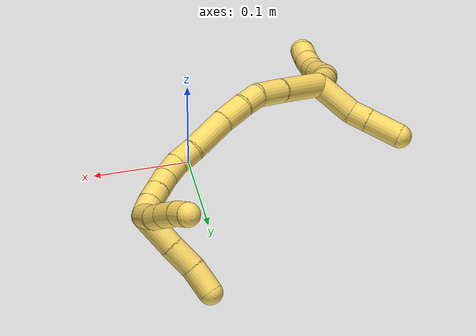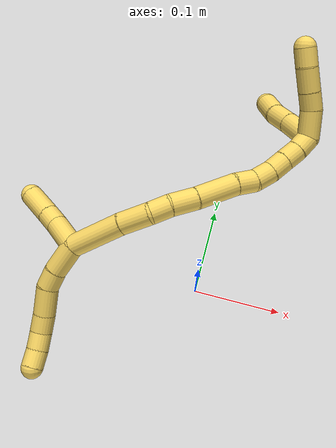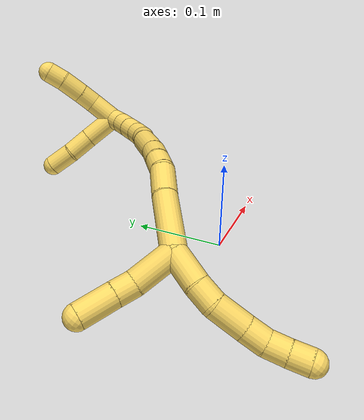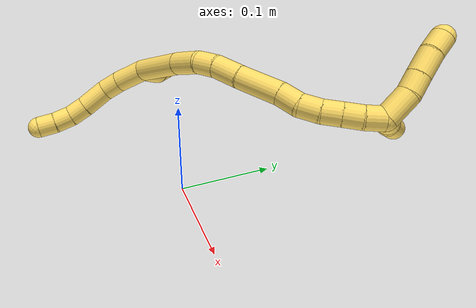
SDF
<sdf version="1.7">
 <world name="default">
  <model name="5">
   <static>0</static>
   <link name="5">
    <collision name="collision-cylinder-e_1_2_8">
     <pose>-0.009251 -0.002479 -0.014575 2.9731 -0.559121 -2.56941</pose>
     <geometry><cylinder><radius>0.0125</radius><length>0.034879</length></cylinder></geometry>
     <surface>
      <friction><ode><mu>1.16</mu><mu2>1.16</mu2><slip1>0</slip1><slip2>0</slip2></ode></friction>
      <contact><ode><kp>1e+06</kp><kd>1</kd><max_vel>0</max_vel><min_depth>0.001</min_depth></ode></contact>
     </surface>
    </collision>
    <visual name="visual-cylinder-e_1_2_8">
     <pose>-0.009251 -0.002479 -0.014575 2.9731 -0.559121 -2.56941</pose>
     <geometry><cylinder><radius>0.0125</radius><length>0.034879</length></cylinder></geometry>
     <material><ambient>1 0.858824 0.4 1</ambient></material>
    </visual>
    <collision name="collision-cylinder-e_2_8_9">
     <pose>-0.022766 -0.00629 -0.038984 3.00699 -0.405809 -2.5084</pose>
     <geometry><cylinder><radius>0.0125</radius><length>0.021605</length></cylinder></geometry>
     <surface>
      <friction><ode><mu>1.16</mu><mu2>1.16</mu2><slip1>0</slip1><slip2>0</slip2></ode></friction>
      <contact><ode><kp>1e+06</kp><kd>1</kd><max_vel>0</max_vel><min_depth>0.001</min_depth></ode></contact>
     </surface>
    </collision>
    <visual name="visual-cylinder-e_2_8_9">
     <pose>-0.022766 -0.00629 -0.038984 3.00699 -0.405809 -2.5084</pose>
     <geometry><cylinder><radius>0.0125</radius><length>0.021605</length></cylinder></geometry>
     <material><ambient>1 0.858824 0.4 1</ambient></material>
    </visual>
    <collision name="collision-cylinder-e_3_9_10">
     <pose>-0.028531 -0.009467 -0.064605 3.02524 -0.094192 -1.36071</pose>
     <geometry><cylinder><radius>0.0125</radius><length>0.031928</length></cylinder></geometry>
     <surface>
      <friction><ode><mu>1.16</mu><mu2>1.16</mu2><slip1>0</slip1><slip2>0</slip2></ode></friction>
      <contact><ode><kp>1e+06</kp><kd>1</kd><max_vel>0</max_vel><min_depth>0.001</min_depth></ode></contact>
     </surface>
    </collision>
    <visual name="visual-cylinder-e_3_9_10">
     <pose>-0.028531 -0.009467 -0.064605 3.02524 -0.094192 -1.36071</pose>
     <geometry><cylinder><radius>0.0125</radius><length>0.031928</length></cylinder></geometry>
     <material><ambient>1 0.858824 0.4 1</ambient></material>
    </visual>
    <collision name="collision-cylinder-e_4_10_11">
     <pose>-0.031373 -0.013351 -0.090643 2.94524 -0.127545 -1.15044</pose>
     <geometry><cylinder><radius>0.0125</radius><length>0.021076</length></cylinder></geometry>
     <surface>
      <friction><ode><mu>1.16</mu><mu2>1.16</mu2><slip1>0</slip1><slip2>0</slip2></ode></friction>
      <contact><ode><kp>1e+06</kp><kd>1</kd><max_vel>0</max_vel><min_depth>0.001</min_depth></ode></contact>
     </surface>
    </collision>
    <visual name="visual-cylinder-e_4_10_11">
     <pose>-0.031373 -0.013351 -0.090643 2.94524 -0.127545 -1.15044</pose>
     <geometry><cylinder><radius>0.0125</radius><length>0.021076</length></cylinder></geometry>
     <material><ambient>1 0.858824 0.4 1</ambient></material>
    </visual>
    <collision name="collision-cylinder-e_5_11_12">
     <pose>-0.033313 -0.019624 -0.110159 2.71299 -0.05877 -0.268478</pose>
     <geometry><cylinder><radius>0.0125</radius><length>0.020407</length></cylinder></geometry>
     <surface>
      <friction><ode><mu>1.16</mu><mu2>1.16</mu2><slip1>0</slip1><slip2>0</slip2></ode></friction>
      <contact><ode><kp>1e+06</kp><kd>1</kd><max_vel>0</max_vel><min_depth>0.001</min_depth></ode></contact>
     </surface>
    </collision>
    <visual name="visual-cylinder-e_5_11_12">
     <pose>-0.033313 -0.019624 -0.110159 2.71299 -0.05877 -0.268478</pose>
     <geometry><cylinder><radius>0.0125</radius><length>0.020407</length></cylinder></geometry>
     <material><ambient>1 0.858824 0.4 1</ambient></material>
    </visual>
    <collision name="collision-cylinder-e_6_12_6">
     <pose>-0.034955 -0.029193 -0.127879 2.57868 -0.103934 -0.355987</pose>
     <geometry><cylinder><radius>0.0125</radius><length>0.020106</length></cylinder></geometry>
     <surface>
      <friction><ode><mu>1.16</mu><mu2>1.16</mu2><slip1>0</slip1><slip2>0</slip2></ode></friction>
      <contact><ode><kp>1e+06</kp><kd>1</kd><max_vel>0</max_vel><min_depth>0.001</min_depth></ode></contact>
     </surface>
    </collision>
    <visual name="visual-cylinder-e_6_12_6">
     <pose>-0.034955 -0.029193 -0.127879 2.57868 -0.103934 -0.355987</pose>
     <geometry><cylinder><radius>0.0125</radius><length>0.020106</length></cylinder></geometry>
     <material><ambient>1 0.858824 0.4 1</ambient></material>
    </visual>
    <collision name="collision-cylinder-e_1_2_13">
     <pose>-0.01505 0.014819 0.005584 -1.21045 -0.759956 0.539165</pose>
     <geometry><cylinder><radius>0.0125</radius><length>0.043693</length></cylinder></geometry>
     <surface>
      <friction><ode><mu>1.16</mu><mu2>1.16</mu2><slip1>0</slip1><slip2>0</slip2></ode></friction>
      <contact><ode><kp>1e+06</kp><kd>1</kd><max_vel>0</max_vel><min_depth>0.001</min_depth></ode></contact>
     </surface>
    </collision>
    <visual name="visual-cylinder-e_1_2_13">
     <pose>-0.01505 0.014819 0.005584 -1.21045 -0.759956 0.539165</pose>
     <geometry><cylinder><radius>0.0125</radius><length>0.043693</length></cylinder></geometry>
     <material><ambient>1 0.858824 0.4 1</ambient></material>
    </visual>
    <collision name="collision-cylinder-e_2_13_14">
     <pose>-0.037735 0.034499 0.015507 -0.842037 -0.86431 0.407347</pose>
     <geometry><cylinder><radius>0.0125</radius><length>0.020077</length></cylinder></geometry>
     <surface>
      <friction><ode><mu>1.16</mu><mu2>1.16</mu2><slip1>0</slip1><slip2>0</slip2></ode></friction>
      <contact><ode><kp>1e+06</kp><kd>1</kd><max_vel>0</max_vel><min_depth>0.001</min_depth></ode></contact>
     </surface>
    </collision>
    <visual name="visual-cylinder-e_2_13_14">
     <pose>-0.037735 0.034499 0.015507 -0.842037 -0.86431 0.407347</pose>
     <geometry><cylinder><radius>0.0125</radius><length>0.020077</length></cylinder></geometry>
     <material><ambient>1 0.858824 0.4 1</ambient></material>
    </visual>
    <collision name="collision-cylinder-e_3_14_5">
     <pose>-0.059334 0.048149 0.027325 -0.865805 -0.880124 0.428522</pose>
     <geometry><cylinder><radius>0.0125</radius><length>0.036231</length></cylinder></geometry>
     <surface>
      <friction><ode><mu>1.16</mu><mu2>1.16</mu2><slip1>0</slip1><slip2>0</slip2></ode></friction>
      <contact><ode><kp>1e+06</kp><kd>1</kd><max_vel>0</max_vel><min_depth>0.001</min_depth></ode></contact>
     </surface>
    </collision>
    <visual name="visual-cylinder-e_3_14_5">
     <pose>-0.059334 0.048149 0.027325 -0.865805 -0.880124 0.428522</pose>
     <geometry><cylinder><radius>0.0125</radius><length>0.036231</length></cylinder></geometry>
     <material><ambient>1 0.858824 0.4 1</ambient></material>
    </visual>
    <collision name="collision-cylinder-e_1_2_15">
     <pose>0.026792 0.001745 0.015306 -0.113501 1.04898 -0.065712</pose>
     <geometry><cylinder><radius>0.0125</radius><length>0.061811</length></cylinder></geometry>
     <surface>
      <friction><ode><mu>1.16</mu><mu2>1.16</mu2><slip1>0</slip1><slip2>0</slip2></ode></friction>
      <contact><ode><kp>1e+06</kp><kd>1</kd><max_vel>0</max_vel><min_depth>0.001</min_depth></ode></contact>
     </surface>
    </collision>
    <visual name="visual-cylinder-e_1_2_15">
     <pose>0.026792 0.001745 0.015306 -0.113501 1.04898 -0.065712</pose>
     <geometry><cylinder><radius>0.0125</radius><length>0.061811</length></cylinder></geometry>
     <material><ambient>1 0.858824 0.4 1</ambient></material>
    </visual>
    <collision name="collision-cylinder-e_2_15_16">
     <pose>0.06906 0.005058 0.037655 -0.219189 1.13451 -0.139979</pose>
     <geometry><cylinder><radius>0.0125</radius><length>0.03415</length></cylinder></geometry>
     <surface>
      <friction><ode><mu>1.16</mu><mu2>1.16</mu2><slip1>0</slip1><slip2>0</slip2></ode></friction>
      <contact><ode><kp>1e+06</kp><kd>1</kd><max_vel>0</max_vel><min_depth>0.001</min_depth></ode></contact>
     </surface>
    </collision>
    <visual name="visual-cylinder-e_2_15_16">
     <pose>0.06906 0.005058 0.037655 -0.219189 1.13451 -0.139979</pose>
     <geometry><cylinder><radius>0.0125</radius><length>0.03415</length></cylinder></geometry>
     <material><ambient>1 0.858824 0.4 1</ambient></material>
    </visual>
    <collision name="collision-cylinder-e_3_16_17">
     <pose>0.09409 0.01122 0.048795 -0.842229 0.998536 -0.479155</pose>
     <geometry><cylinder><radius>0.0125</radius><length>0.022731</length></cylinder></geometry>
     <surface>
      <friction><ode><mu>1.16</mu><mu2>1.16</mu2><slip1>0</slip1><slip2>0</slip2></ode></friction>
      <contact><ode><kp>1e+06</kp><kd>1</kd><max_vel>0</max_vel><min_depth>0.001</min_depth></ode></contact>
     </surface>
    </collision>
    <visual name="visual-cylinder-e_3_16_17">
     <pose>0.09409 0.01122 0.048795 -0.842229 0.998536 -0.479155</pose>
     <geometry><cylinder><radius>0.0125</radius><length>0.022731</length></cylinder></geometry>
     <material><ambient>1 0.858824 0.4 1</ambient></material>
    </visual>
    <collision name="collision-cylinder-e_4_17_18">
     <pose>0.116011 0.023226 0.055984 -1.1759 0.9947 -0.694423</pose>
     <geometry><cylinder><radius>0.0125</radius><length>0.029491</length></cylinder></geometry>
     <surface>
      <friction><ode><mu>1.16</mu><mu2>1.16</mu2><slip1>0</slip1><slip2>0</slip2></ode></friction>
      <contact><ode><kp>1e+06</kp><kd>1</kd><max_vel>0</max_vel><min_depth>0.001</min_depth></ode></contact>
     </surface>
    </collision>
    <visual name="visual-cylinder-e_4_17_18">
     <pose>0.116011 0.023226 0.055984 -1.1759 0.9947 -0.694423</pose>
     <geometry><cylinder><radius>0.0125</radius><length>0.029491</length></cylinder></geometry>
     <material><ambient>1 0.858824 0.4 1</ambient></material>
    </visual>
    <collision name="collision-cylinder-e_5_18_19">
     <pose>0.14687 0.043696 0.065288 -1.12654 0.907248 -0.597348</pose>
     <geometry><cylinder><radius>0.0125</radius><length>0.04695</length></cylinder></geometry>
     <surface>
      <friction><ode><mu>1.16</mu><mu2>1.16</mu2><slip1>0</slip1><slip2>0</slip2></ode></friction>
      <contact><ode><kp>1e+06</kp><kd>1</kd><max_vel>0</max_vel><min_depth>0.001</min_depth></ode></contact>
     </surface>
    </collision>
    <visual name="visual-cylinder-e_5_18_19">
     <pose>0.14687 0.043696 0.065288 -1.12654 0.907248 -0.597348</pose>
     <geometry><cylinder><radius>0.0125</radius><length>0.04695</length></cylinder></geometry>
     <material><ambient>1 0.858824 0.4 1</ambient></material>
    </visual>
    <collision name="collision-cylinder-e_6_19_20">
     <pose>0.174808 0.063061 0.072801 -1.36779 0.972172 -0.813353</pose>
     <geometry><cylinder><radius>0.0125</radius><length>0.022864</length></cylinder></geometry>
     <surface>
      <friction><ode><mu>1.16</mu><mu2>1.16</mu2><slip1>0</slip1><slip2>0</slip2></ode></friction>
      <contact><ode><kp>1e+06</kp><kd>1</kd><max_vel>0</max_vel><min_depth>0.001</min_depth></ode></contact>
     </surface>
    </collision>
    <visual name="visual-cylinder-e_6_19_20">
     <pose>0.174808 0.063061 0.072801 -1.36779 0.972172 -0.813353</pose>
     <geometry><cylinder><radius>0.0125</radius><length>0.022864</length></cylinder></geometry>
     <material><ambient>1 0.858824 0.4 1</ambient></material>
    </visual>
    <collision name="collision-cylinder-e_7_20_21">
     <pose>0.191901 0.075781 0.078344 -0.985904 0.782853 -0.43636</pose>
     <geometry><cylinder><radius>0.0125</radius><length>0.02169</length></cylinder></geometry>
     <surface>
      <friction><ode><mu>1.16</mu><mu2>1.16</mu2><slip1>0</slip1><slip2>0</slip2></ode></friction>
      <contact><ode><kp>1e+06</kp><kd>1</kd><max_vel>0</max_vel><min_depth>0.001</min_depth></ode></contact>
     </surface>
    </collision>
    <visual name="visual-cylinder-e_7_20_21">
     <pose>0.191901 0.075781 0.078344 -0.985904 0.782853 -0.43636</pose>
     <geometry><cylinder><radius>0.0125</radius><length>0.02169</length></cylinder></geometry>
     <material><ambient>1 0.858824 0.4 1</ambient></material>
    </visual>
    <collision name="collision-cylinder-e_8_21_22">
     <pose>0.205871 0.088002 0.088006 -0.820438 0.672031 -0.301476</pose>
     <geometry><cylinder><radius>0.0125</radius><length>0.020303</length></cylinder></geometry>
     <surface>
      <friction><ode><mu>1.16</mu><mu2>1.16</mu2><slip1>0</slip1><slip2>0</slip2></ode></friction>
      <contact><ode><kp>1e+06</kp><kd>1</kd><max_vel>0</max_vel><min_depth>0.001</min_depth></ode></contact>
     </surface>
    </collision>
    <visual name="visual-cylinder-e_8_21_22">
     <pose>0.205871 0.088002 0.088006 -0.820438 0.672031 -0.301476</pose>
     <geometry><cylinder><radius>0.0125</radius><length>0.020303</length></cylinder></geometry>
     <material><ambient>1 0.858824 0.4 1</ambient></material>
    </visual>
    <collision name="collision-cylinder-e_9_22_23">
     <pose>0.218467 0.099566 0.098675 -0.830983 0.678209 -0.308755</pose>
     <geometry><cylinder><radius>0.0125</radius><length>0.020008</length></cylinder></geometry>
     <surface>
      <friction><ode><mu>1.16</mu><mu2>1.16</mu2><slip1>0</slip1><slip2>0</slip2></ode></friction>
      <contact><ode><kp>1e+06</kp><kd>1</kd><max_vel>0</max_vel><min_depth>0.001</min_depth></ode></contact>
     </surface>
    </collision>
    <visual name="visual-cylinder-e_9_22_23">
     <pose>0.218467 0.099566 0.098675 -0.830983 0.678209 -0.308755</pose>
     <geometry><cylinder><radius>0.0125</radius><length>0.020008</length></cylinder></geometry>
     <material><ambient>1 0.858824 0.4 1</ambient></material>
    </visual>
    <collision name="collision-cylinder-e_10_23_1">
     <pose>0.22999 0.111134 0.110147 -0.751648 0.552185 -0.222666</pose>
     <geometry><cylinder><radius>0.0125</radius><length>0.020001</length></cylinder></geometry>
     <surface>
      <friction><ode><mu>1.16</mu><mu2>1.16</mu2><slip1>0</slip1><slip2>0</slip2></ode></friction>
      <contact><ode><kp>1e+06</kp><kd>1</kd><max_vel>0</max_vel><min_depth>0.001</min_depth></ode></contact>
     </surface>
    </collision>
    <visual name="visual-cylinder-e_10_23_1">
     <pose>0.22999 0.111134 0.110147 -0.751648 0.552185 -0.222666</pose>
     <geometry><cylinder><radius>0.0125</radius><length>0.020001</length></cylinder></geometry>
     <material><ambient>1 0.858824 0.4 1</ambient></material>
    </visual>
    <collision name="collision-cylinder-e_1_1_24">
     <pose>0.235532 0.117259 0.132431 -0.019331 0.018419 -0.000178</pose>
     <geometry><cylinder><radius>0.0125</radius><length>0.032138</length></cylinder></geometry>
     <surface>
      <friction><ode><mu>1.16</mu><mu2>1.16</mu2><slip1>0</slip1><slip2>0</slip2></ode></friction>
      <contact><ode><kp>1e+06</kp><kd>1</kd><max_vel>0</max_vel><min_depth>0.001</min_depth></ode></contact>
     </surface>
    </collision>
    <visual name="visual-cylinder-e_1_1_24">
     <pose>0.235532 0.117259 0.132431 -0.019331 0.018419 -0.000178</pose>
     <geometry><cylinder><radius>0.0125</radius><length>0.032138</length></cylinder></geometry>
     <material><ambient>1 0.858824 0.4 1</ambient></material>
    </visual>
    <collision name="collision-cylinder-e_2_24_25">
     <pose>0.233914 0.116267 0.158526 0.129056 -0.186959 -0.012116</pose>
     <geometry><cylinder><radius>0.0125</radius><length>0.02059</length></cylinder></geometry>
     <surface>
      <friction><ode><mu>1.16</mu><mu2>1.16</mu2><slip1>0</slip1><slip2>0</slip2></ode></friction>
      <contact><ode><kp>1e+06</kp><kd>1</kd><max_vel>0</max_vel><min_depth>0.001</min_depth></ode></contact>
     </surface>
    </collision>
    <visual name="visual-cylinder-e_2_24_25">
     <pose>0.233914 0.116267 0.158526 0.129056 -0.186959 -0.012116</pose>
     <geometry><cylinder><radius>0.0125</radius><length>0.02059</length></cylinder></geometry>
     <material><ambient>1 0.858824 0.4 1</ambient></material>
    </visual>
    <collision name="collision-cylinder-e_3_25_26">
     <pose>0.229516 0.113733 0.181649 0.093843 -0.186723 -0.008793</pose>
     <geometry><cylinder><radius>0.0125</radius><length>0.026764</length></cylinder></geometry>
     <surface>
      <friction><ode><mu>1.16</mu><mu2>1.16</mu2><slip1>0</slip1><slip2>0</slip2></ode></friction>
      <contact><ode><kp>1e+06</kp><kd>1</kd><max_vel>0</max_vel><min_depth>0.001</min_depth></ode></contact>
     </surface>
    </collision>
    <visual name="visual-cylinder-e_3_25_26">
     <pose>0.229516 0.113733 0.181649 0.093843 -0.186723 -0.008793</pose>
     <geometry><cylinder><radius>0.0125</radius><length>0.026764</length></cylinder></geometry>
     <material><ambient>1 0.858824 0.4 1</ambient></material>
    </visual>
    <collision name="collision-cylinder-e_4_26_4">
     <pose>0.225173 0.112901 0.204816 -0.039629 -0.18232 0.003623</pose>
     <geometry><cylinder><radius>0.0125</radius><length>0.020508</length></cylinder></geometry>
     <surface>
      <friction><ode><mu>1.16</mu><mu2>1.16</mu2><slip1>0</slip1><slip2>0</slip2></ode></friction>
      <contact><ode><kp>1e+06</kp><kd>1</kd><max_vel>0</max_vel><min_depth>0.001</min_depth></ode></contact>
     </surface>
    </collision>
    <visual name="visual-cylinder-e_4_26_4">
     <pose>0.225173 0.112901 0.204816 -0.039629 -0.18232 0.003623</pose>
     <geometry><cylinder><radius>0.0125</radius><length>0.020508</length></cylinder></geometry>
     <material><ambient>1 0.858824 0.4 1</ambient></material>
    </visual>
    <collision name="collision-cylinder-e_1_1_27">
     <pose>0.223191 0.132566 0.120985 -1.28331 -0.636779 0.482895</pose>
     <geometry><cylinder><radius>0.0125</radius><length>0.040512</length></cylinder></geometry>
     <surface>
      <friction><ode><mu>1.16</mu><mu2>1.16</mu2><slip1>0</slip1><slip2>0</slip2></ode></friction>
      <contact><ode><kp>1e+06</kp><kd>1</kd><max_vel>0</max_vel><min_depth>0.001</min_depth></ode></contact>
     </surface>
    </collision>
    <visual name="visual-cylinder-e_1_1_27">
     <pose>0.223191 0.132566 0.120985 -1.28331 -0.636779 0.482895</pose>
     <geometry><cylinder><radius>0.0125</radius><length>0.040512</length></cylinder></geometry>
     <material><ambient>1 0.858824 0.4 1</ambient></material>
    </visual>
    <collision name="collision-cylinder-e_2_27_28">
     <pose>0.201738 0.159161 0.128696 -1.2962 -0.689778 0.531196</pose>
     <geometry><cylinder><radius>0.0125</radius><length>0.029571</length></cylinder></geometry>
     <surface>
      <friction><ode><mu>1.16</mu><mu2>1.16</mu2><slip1>0</slip1><slip2>0</slip2></ode></friction>
      <contact><ode><kp>1e+06</kp><kd>1</kd><max_vel>0</max_vel><min_depth>0.001</min_depth></ode></contact>
     </surface>
    </collision>
    <visual name="visual-cylinder-e_2_27_28">
     <pose>0.201738 0.159161 0.128696 -1.2962 -0.689778 0.531196</pose>
     <geometry><cylinder><radius>0.0125</radius><length>0.029571</length></cylinder></geometry>
     <material><ambient>1 0.858824 0.4 1</ambient></material>
    </visual>
    <collision name="collision-cylinder-e_3_28_3">
     <pose>0.185289 0.182675 0.135918 -1.25259 -0.489984 0.357879</pose>
     <geometry><cylinder><radius>0.0125</radius><length>0.029917</length></cylinder></geometry>
     <surface>
      <friction><ode><mu>1.16</mu><mu2>1.16</mu2><slip1>0</slip1><slip2>0</slip2></ode></friction>
      <contact><ode><kp>1e+06</kp><kd>1</kd><max_vel>0</max_vel><min_depth>0.001</min_depth></ode></contact>
     </surface>
    </collision>
    <visual name="visual-cylinder-e_3_28_3">
     <pose>0.185289 0.182675 0.135918 -1.25259 -0.489984 0.357879</pose>
     <geometry><cylinder><radius>0.0125</radius><length>0.029917</length></cylinder></geometry>
     <material><ambient>1 0.858824 0.4 1</ambient></material>
    </visual>
    <collision name="collision-sphere-3">
     <pose>0.17825 0.195211 0.140047 0 -0 0</pose>
     <geometry><sphere><radius>0.0125</radius></sphere></geometry>
     <surface>
      <friction><ode><mu>1.16</mu><mu2>1.16</mu2><slip1>0</slip1><slip2>0</slip2></ode></friction>
      <contact><ode><kp>1e+06</kp><kd>1</kd><max_vel>0</max_vel><min_depth>0.001</min_depth></ode></contact>
     </surface>
    </collision>
    <visual name="visual-sphere-3">
     <pose>0.17825 0.195211 0.140047 0 -0 0</pose>
     <geometry><sphere><radius>0.0125</radius></sphere></geometry>
     <material><ambient>1 0.858824 0.4 1</ambient></material>
    </visual>
    <collision name="collision-sphere-28">
     <pose>0.192329 0.170139 0.131789 0 -0 0</pose>
     <geometry><sphere><radius>0.0125</radius></sphere></geometry>
     <surface>
      <friction><ode><mu>1.16</mu><mu2>1.16</mu2><slip1>0</slip1><slip2>0</slip2></ode></friction>
      <contact><ode><kp>1e+06</kp><kd>1</kd><max_vel>0</max_vel><min_depth>0.001</min_depth></ode></contact>
     </surface>
    </collision>
    <visual name="visual-sphere-28">
     <pose>0.192329 0.170139 0.131789 0 -0 0</pose>
     <geometry><sphere><radius>0.0125</radius></sphere></geometry>
     <material><ambient>1 0.858824 0.4 1</ambient></material>
    </visual>
    <collision name="collision-sphere-27">
     <pose>0.211147 0.148184 0.125603 0 -0 0</pose>
     <geometry><sphere><radius>0.0125</radius></sphere></geometry>
     <surface>
      <friction><ode><mu>1.16</mu><mu2>1.16</mu2><slip1>0</slip1><slip2>0</slip2></ode></friction>
      <contact><ode><kp>1e+06</kp><kd>1</kd><max_vel>0</max_vel><min_depth>0.001</min_depth></ode></contact>
     </surface>
    </collision>
    <visual name="visual-sphere-27">
     <pose>0.211147 0.148184 0.125603 0 -0 0</pose>
     <geometry><sphere><radius>0.0125</radius></sphere></geometry>
     <material><ambient>1 0.858824 0.4 1</ambient></material>
    </visual>
    <collision name="collision-sphere-4">
     <pose>0.223314 0.1133 0.214892 0 -0 0</pose>
     <geometry><sphere><radius>0.0125</radius></sphere></geometry>
     <surface>
      <friction><ode><mu>1.16</mu><mu2>1.16</mu2><slip1>0</slip1><slip2>0</slip2></ode></friction>
      <contact><ode><kp>1e+06</kp><kd>1</kd><max_vel>0</max_vel><min_depth>0.001</min_depth></ode></contact>
     </surface>
    </collision>
    <visual name="visual-sphere-4">
     <pose>0.223314 0.1133 0.214892 0 -0 0</pose>
     <geometry><sphere><radius>0.0125</radius></sphere></geometry>
     <material><ambient>1 0.858824 0.4 1</ambient></material>
    </visual>
    <collision name="collision-sphere-26">
     <pose>0.227032 0.112501 0.19474 0 -0 0</pose>
     <geometry><sphere><radius>0.0125</radius></sphere></geometry>
     <surface>
      <friction><ode><mu>1.16</mu><mu2>1.16</mu2><slip1>0</slip1><slip2>0</slip2></ode></friction>
      <contact><ode><kp>1e+06</kp><kd>1</kd><max_vel>0</max_vel><min_depth>0.001</min_depth></ode></contact>
     </surface>
    </collision>
    <visual name="visual-sphere-26">
     <pose>0.227032 0.112501 0.19474 0 -0 0</pose>
     <geometry><sphere><radius>0.0125</radius></sphere></geometry>
     <material><ambient>1 0.858824 0.4 1</ambient></material>
    </visual>
    <collision name="collision-sphere-25">
     <pose>0.232 0.114965 0.168557 0 -0 0</pose>
     <geometry><sphere><radius>0.0125</radius></sphere></geometry>
     <surface>
      <friction><ode><mu>1.16</mu><mu2>1.16</mu2><slip1>0</slip1><slip2>0</slip2></ode></friction>
      <contact><ode><kp>1e+06</kp><kd>1</kd><max_vel>0</max_vel><min_depth>0.001</min_depth></ode></contact>
     </surface>
    </collision>
    <visual name="visual-sphere-25">
     <pose>0.232 0.114965 0.168557 0 -0 0</pose>
     <geometry><sphere><radius>0.0125</radius></sphere></geometry>
     <material><ambient>1 0.858824 0.4 1</ambient></material>
    </visual>
    <collision name="collision-sphere-24">
     <pose>0.235828 0.117569 0.148494 0 -0 0</pose>
     <geometry><sphere><radius>0.0125</radius></sphere></geometry>
     <surface>
      <friction><ode><mu>1.16</mu><mu2>1.16</mu2><slip1>0</slip1><slip2>0</slip2></ode></friction>
      <contact><ode><kp>1e+06</kp><kd>1</kd><max_vel>0</max_vel><min_depth>0.001</min_depth></ode></contact>
     </surface>
    </collision>
    <visual name="visual-sphere-24">
     <pose>0.235828 0.117569 0.148494 0 -0 0</pose>
     <geometry><sphere><radius>0.0125</radius></sphere></geometry>
     <material><ambient>1 0.858824 0.4 1</ambient></material>
    </visual>
    <collision name="collision-sphere-1">
     <pose>0.235236 0.116948 0.116368 0 -0 0</pose>
     <geometry><sphere><radius>0.0125</radius></sphere></geometry>
     <surface>
      <friction><ode><mu>1.16</mu><mu2>1.16</mu2><slip1>0</slip1><slip2>0</slip2></ode></friction>
      <contact><ode><kp>1e+06</kp><kd>1</kd><max_vel>0</max_vel><min_depth>0.001</min_depth></ode></contact>
     </surface>
    </collision>
    <visual name="visual-sphere-1">
     <pose>0.235236 0.116948 0.116368 0 -0 0</pose>
     <geometry><sphere><radius>0.0125</radius></sphere></geometry>
     <material><ambient>1 0.858824 0.4 1</ambient></material>
    </visual>
    <collision name="collision-sphere-23">
     <pose>0.224744 0.10532 0.103927 0 -0 0</pose>
     <geometry><sphere><radius>0.0125</radius></sphere></geometry>
     <surface>
      <friction><ode><mu>1.16</mu><mu2>1.16</mu2><slip1>0</slip1><slip2>0</slip2></ode></friction>
      <contact><ode><kp>1e+06</kp><kd>1</kd><max_vel>0</max_vel><min_depth>0.001</min_depth></ode></contact>
     </surface>
    </collision>
    <visual name="visual-sphere-23">
     <pose>0.224744 0.10532 0.103927 0 -0 0</pose>
     <geometry><sphere><radius>0.0125</radius></sphere></geometry>
     <material><ambient>1 0.858824 0.4 1</ambient></material>
    </visual>
    <collision name="collision-sphere-22">
     <pose>0.212191 0.093812 0.093423 0 -0 0</pose>
     <geometry><sphere><radius>0.0125</radius></sphere></geometry>
     <surface>
      <friction><ode><mu>1.16</mu><mu2>1.16</mu2><slip1>0</slip1><slip2>0</slip2></ode></friction>
      <contact><ode><kp>1e+06</kp><kd>1</kd><max_vel>0</max_vel><min_depth>0.001</min_depth></ode></contact>
     </surface>
    </collision>
    <visual name="visual-sphere-22">
     <pose>0.212191 0.093812 0.093423 0 -0 0</pose>
     <geometry><sphere><radius>0.0125</radius></sphere></geometry>
     <material><ambient>1 0.858824 0.4 1</ambient></material>
    </visual>
    <collision name="collision-sphere-21">
     <pose>0.19955 0.082191 0.082589 0 -0 0</pose>
     <geometry><sphere><radius>0.0125</radius></sphere></geometry>
     <surface>
      <friction><ode><mu>1.16</mu><mu2>1.16</mu2><slip1>0</slip1><slip2>0</slip2></ode></friction>
      <contact><ode><kp>1e+06</kp><kd>1</kd><max_vel>0</max_vel><min_depth>0.001</min_depth></ode></contact>
     </surface>
    </collision>
    <visual name="visual-sphere-21">
     <pose>0.19955 0.082191 0.082589 0 -0 0</pose>
     <geometry><sphere><radius>0.0125</radius></sphere></geometry>
     <material><ambient>1 0.858824 0.4 1</ambient></material>
    </visual>
    <collision name="collision-sphere-12">
     <pose>-0.033912 -0.023857 -0.119423 0 -0 0</pose>
     <geometry><sphere><radius>0.0125</radius></sphere></geometry>
     <surface>
      <friction><ode><mu>1.16</mu><mu2>1.16</mu2><slip1>0</slip1><slip2>0</slip2></ode></friction>
      <contact><ode><kp>1e+06</kp><kd>1</kd><max_vel>0</max_vel><min_depth>0.001</min_depth></ode></contact>
     </surface>
    </collision>
    <visual name="visual-sphere-12">
     <pose>-0.033912 -0.023857 -0.119423 0 -0 0</pose>
     <geometry><sphere><radius>0.0125</radius></sphere></geometry>
     <material><ambient>1 0.858824 0.4 1</ambient></material>
    </visual>
    <collision name="collision-sphere-11">
     <pose>-0.032714 -0.015391 -0.100894 0 -0 0</pose>
     <geometry><sphere><radius>0.0125</radius></sphere></geometry>
     <surface>
      <friction><ode><mu>1.16</mu><mu2>1.16</mu2><slip1>0</slip1><slip2>0</slip2></ode></friction>
      <contact><ode><kp>1e+06</kp><kd>1</kd><max_vel>0</max_vel><min_depth>0.001</min_depth></ode></contact>
     </surface>
    </collision>
    <visual name="visual-sphere-11">
     <pose>-0.032714 -0.015391 -0.100894 0 -0 0</pose>
     <geometry><sphere><radius>0.0125</radius></sphere></geometry>
     <material><ambient>1 0.858824 0.4 1</ambient></material>
    </visual>
    <collision name="collision-sphere-10">
     <pose>-0.030033 -0.011312 -0.080391 0 -0 0</pose>
     <geometry><sphere><radius>0.0125</radius></sphere></geometry>
     <surface>
      <friction><ode><mu>1.16</mu><mu2>1.16</mu2><slip1>0</slip1><slip2>0</slip2></ode></friction>
      <contact><ode><kp>1e+06</kp><kd>1</kd><max_vel>0</max_vel><min_depth>0.001</min_depth></ode></contact>
     </surface>
    </collision>
    <visual name="visual-sphere-10">
     <pose>-0.030033 -0.011312 -0.080391 0 -0 0</pose>
     <geometry><sphere><radius>0.0125</radius></sphere></geometry>
     <material><ambient>1 0.858824 0.4 1</ambient></material>
    </visual>
    <collision name="collision-sphere-9">
     <pose>-0.02703 -0.007622 -0.04882 0 -0 0</pose>
     <geometry><sphere><radius>0.0125</radius></sphere></geometry>
     <surface>
      <friction><ode><mu>1.16</mu><mu2>1.16</mu2><slip1>0</slip1><slip2>0</slip2></ode></friction>
      <contact><ode><kp>1e+06</kp><kd>1</kd><max_vel>0</max_vel><min_depth>0.001</min_depth></ode></contact>
     </surface>
    </collision>
    <visual name="visual-sphere-9">
     <pose>-0.02703 -0.007622 -0.04882 0 -0 0</pose>
     <geometry><sphere><radius>0.0125</radius></sphere></geometry>
     <material><ambient>1 0.858824 0.4 1</ambient></material>
    </visual>
    <collision name="collision-sphere-2">
     <geometry><sphere><radius>0.0125</radius></sphere></geometry>
     <surface>
      <friction><ode><mu>1.16</mu><mu2>1.16</mu2><slip1>0</slip1><slip2>0</slip2></ode></friction>
      <contact><ode><kp>1e+06</kp><kd>1</kd><max_vel>0</max_vel><min_depth>0.001</min_depth></ode></contact>
     </surface>
    </collision>
    <visual name="visual-sphere-2">
     <geometry><sphere><radius>0.0125</radius></sphere></geometry>
     <material><ambient>1 0.858824 0.4 1</ambient></material>
    </visual>
    <collision name="collision-sphere-19">
     <pose>0.165364 0.056751 0.071502 0 -0 0</pose>
     <geometry><sphere><radius>0.0125</radius></sphere></geometry>
     <surface>
      <friction><ode><mu>1.16</mu><mu2>1.16</mu2><slip1>0</slip1><slip2>0</slip2></ode></friction>
      <contact><ode><kp>1e+06</kp><kd>1</kd><max_vel>0</max_vel><min_depth>0.001</min_depth></ode></contact>
     </surface>
    </collision>
    <visual name="visual-sphere-19">
     <pose>0.165364 0.056751 0.071502 0 -0 0</pose>
     <geometry><sphere><radius>0.0125</radius></sphere></geometry>
     <material><ambient>1 0.858824 0.4 1</ambient></material>
    </visual>
    <collision name="collision-sphere-8">
     <pose>-0.018501 -0.004958 -0.029149 0 -0 0</pose>
     <geometry><sphere><radius>0.0125</radius></sphere></geometry>
     <surface>
      <friction><ode><mu>1.16</mu><mu2>1.16</mu2><slip1>0</slip1><slip2>0</slip2></ode></friction>
      <contact><ode><kp>1e+06</kp><kd>1</kd><max_vel>0</max_vel><min_depth>0.001</min_depth></ode></contact>
     </surface>
    </collision>
    <visual name="visual-sphere-8">
     <pose>-0.018501 -0.004958 -0.029149 0 -0 0</pose>
     <geometry><sphere><radius>0.0125</radius></sphere></geometry>
     <material><ambient>1 0.858824 0.4 1</ambient></material>
    </visual>
    <collision name="collision-sphere-6">
     <pose>-0.035998 -0.034529 -0.136335 0 -0 0</pose>
     <geometry><sphere><radius>0.0125</radius></sphere></geometry>
     <surface>
      <friction><ode><mu>1.16</mu><mu2>1.16</mu2><slip1>0</slip1><slip2>0</slip2></ode></friction>
      <contact><ode><kp>1e+06</kp><kd>1</kd><max_vel>0</max_vel><min_depth>0.001</min_depth></ode></contact>
     </surface>
    </collision>
    <visual name="visual-sphere-6">
     <pose>-0.035998 -0.034529 -0.136335 0 -0 0</pose>
     <geometry><sphere><radius>0.0125</radius></sphere></geometry>
     <material><ambient>1 0.858824 0.4 1</ambient></material>
    </visual>
    <collision name="collision-sphere-13">
     <pose>-0.030099 0.029637 0.011167 0 -0 0</pose>
     <geometry><sphere><radius>0.0125</radius></sphere></geometry>
     <surface>
      <friction><ode><mu>1.16</mu><mu2>1.16</mu2><slip1>0</slip1><slip2>0</slip2></ode></friction>
      <contact><ode><kp>1e+06</kp><kd>1</kd><max_vel>0</max_vel><min_depth>0.001</min_depth></ode></contact>
     </surface>
    </collision>
    <visual name="visual-sphere-13">
     <pose>-0.030099 0.029637 0.011167 0 -0 0</pose>
     <geometry><sphere><radius>0.0125</radius></sphere></geometry>
     <material><ambient>1 0.858824 0.4 1</ambient></material>
    </visual>
    <collision name="collision-sphere-14">
     <pose>-0.045371 0.03936 0.019847 0 -0 0</pose>
     <geometry><sphere><radius>0.0125</radius></sphere></geometry>
     <surface>
      <friction><ode><mu>1.16</mu><mu2>1.16</mu2><slip1>0</slip1><slip2>0</slip2></ode></friction>
      <contact><ode><kp>1e+06</kp><kd>1</kd><max_vel>0</max_vel><min_depth>0.001</min_depth></ode></contact>
     </surface>
    </collision>
    <visual name="visual-sphere-14">
     <pose>-0.045371 0.03936 0.019847 0 -0 0</pose>
     <geometry><sphere><radius>0.0125</radius></sphere></geometry>
     <material><ambient>1 0.858824 0.4 1</ambient></material>
    </visual>
    <collision name="collision-sphere-5">
     <pose>-0.073298 0.056939 0.034804 0 -0 0</pose>
     <geometry><sphere><radius>0.0125</radius></sphere></geometry>
     <surface>
      <friction><ode><mu>1.16</mu><mu2>1.16</mu2><slip1>0</slip1><slip2>0</slip2></ode></friction>
      <contact><ode><kp>1e+06</kp><kd>1</kd><max_vel>0</max_vel><min_depth>0.001</min_depth></ode></contact>
     </surface>
    </collision>
    <visual name="visual-sphere-5">
     <pose>-0.073298 0.056939 0.034804 0 -0 0</pose>
     <geometry><sphere><radius>0.0125</radius></sphere></geometry>
     <material><ambient>1 0.858824 0.4 1</ambient></material>
    </visual>
    <collision name="collision-sphere-15">
     <pose>0.053585 0.003489 0.030612 0 -0 0</pose>
     <geometry><sphere><radius>0.0125</radius></sphere></geometry>
     <surface>
      <friction><ode><mu>1.16</mu><mu2>1.16</mu2><slip1>0</slip1><slip2>0</slip2></ode></friction>
      <contact><ode><kp>1e+06</kp><kd>1</kd><max_vel>0</max_vel><min_depth>0.001</min_depth></ode></contact>
     </surface>
    </collision>
    <visual name="visual-sphere-15">
     <pose>0.053585 0.003489 0.030612 0 -0 0</pose>
     <geometry><sphere><radius>0.0125</radius></sphere></geometry>
     <material><ambient>1 0.858824 0.4 1</ambient></material>
    </visual>
    <collision name="collision-sphere-16">
     <pose>0.084536 0.006627 0.044698 0 -0 0</pose>
     <geometry><sphere><radius>0.0125</radius></sphere></geometry>
     <surface>
      <friction><ode><mu>1.16</mu><mu2>1.16</mu2><slip1>0</slip1><slip2>0</slip2></ode></friction>
      <contact><ode><kp>1e+06</kp><kd>1</kd><max_vel>0</max_vel><min_depth>0.001</min_depth></ode></contact>
     </surface>
    </collision>
    <visual name="visual-sphere-16">
     <pose>0.084536 0.006627 0.044698 0 -0 0</pose>
     <geometry><sphere><radius>0.0125</radius></sphere></geometry>
     <material><ambient>1 0.858824 0.4 1</ambient></material>
    </visual>
    <collision name="collision-sphere-17">
     <pose>0.103645 0.015812 0.052893 0 -0 0</pose>
     <geometry><sphere><radius>0.0125</radius></sphere></geometry>
     <surface>
      <friction><ode><mu>1.16</mu><mu2>1.16</mu2><slip1>0</slip1><slip2>0</slip2></ode></friction>
      <contact><ode><kp>1e+06</kp><kd>1</kd><max_vel>0</max_vel><min_depth>0.001</min_depth></ode></contact>
     </surface>
    </collision>
    <visual name="visual-sphere-17">
     <pose>0.103645 0.015812 0.052893 0 -0 0</pose>
     <geometry><sphere><radius>0.0125</radius></sphere></geometry>
     <material><ambient>1 0.858824 0.4 1</ambient></material>
    </visual>
    <collision name="collision-sphere-18">
     <pose>0.128376 0.030641 0.059074 0 -0 0</pose>
     <geometry><sphere><radius>0.0125</radius></sphere></geometry>
     <surface>
      <friction><ode><mu>1.16</mu><mu2>1.16</mu2><slip1>0</slip1><slip2>0</slip2></ode></friction>
      <contact><ode><kp>1e+06</kp><kd>1</kd><max_vel>0</max_vel><min_depth>0.001</min_depth></ode></contact>
     </surface>
    </collision>
    <visual name="visual-sphere-18">
     <pose>0.128376 0.030641 0.059074 0 -0 0</pose>
     <geometry><sphere><radius>0.0125</radius></sphere></geometry>
     <material><ambient>1 0.858824 0.4 1</ambient></material>
    </visual>
    <collision name="collision-sphere-20">
     <pose>0.184252 0.069371 0.0741 0 -0 0</pose>
     <geometry><sphere><radius>0.0125</radius></sphere></geometry>
     <surface>
      <friction><ode><mu>1.16</mu><mu2>1.16</mu2><slip1>0</slip1><slip2>0</slip2></ode></friction>
      <contact><ode><kp>1e+06</kp><kd>1</kd><max_vel>0</max_vel><min_depth>0.001</min_depth></ode></contact>
     </surface>
    </collision>
    <visual name="visual-sphere-20">
     <pose>0.184252 0.069371 0.0741 0 -0 0</pose>
     <geometry><sphere><radius>0.0125</radius></sphere></geometry>
     <material><ambient>1 0.858824 0.4 1</ambient></material>
    </visual>
    <inertial>
     <pose>0.098858 0.054286 0.050858 0 -0 0</pose>
     <mass>0.75</mass>
     <inertia><ixx>5.1e-05</ixx><ixy>0</ixy><ixz>0</ixz><iyy>8.4e-05</iyy><iyz>0</iyz><izz>-3.7e-05</izz></inertia>
    </inertial>
   </link>
   <pose>-0.139137 -0.003137 0.076888 -0.918279 -0.177839 0.085027</pose>
  </model>
 </world>
</sdf>
